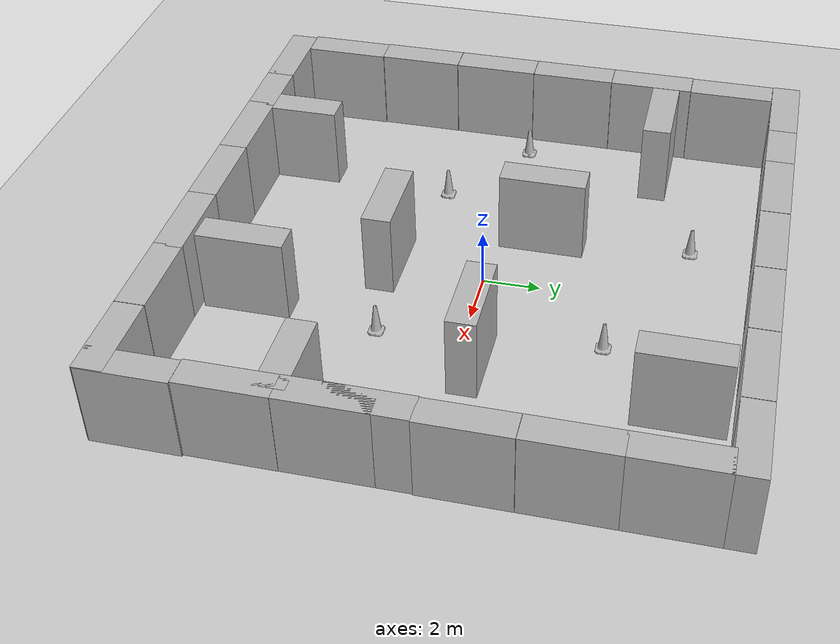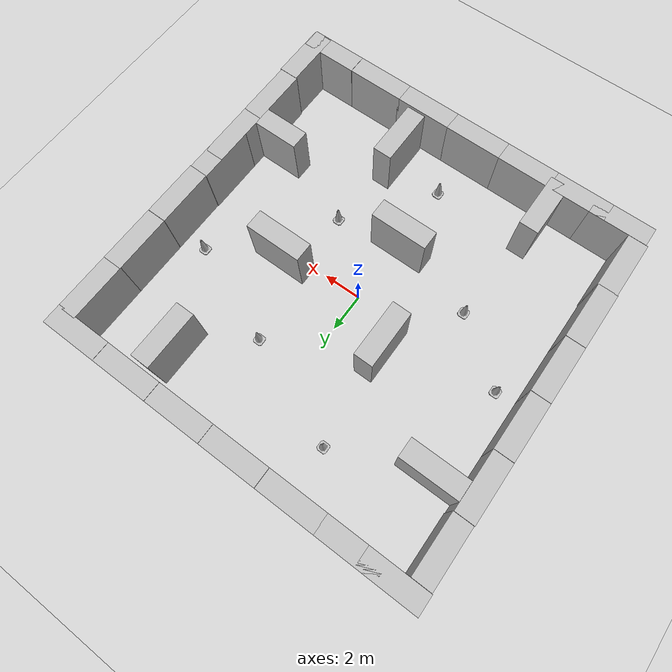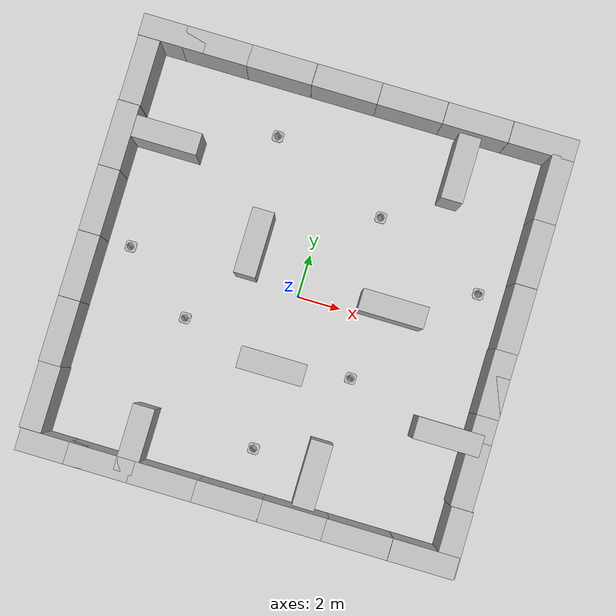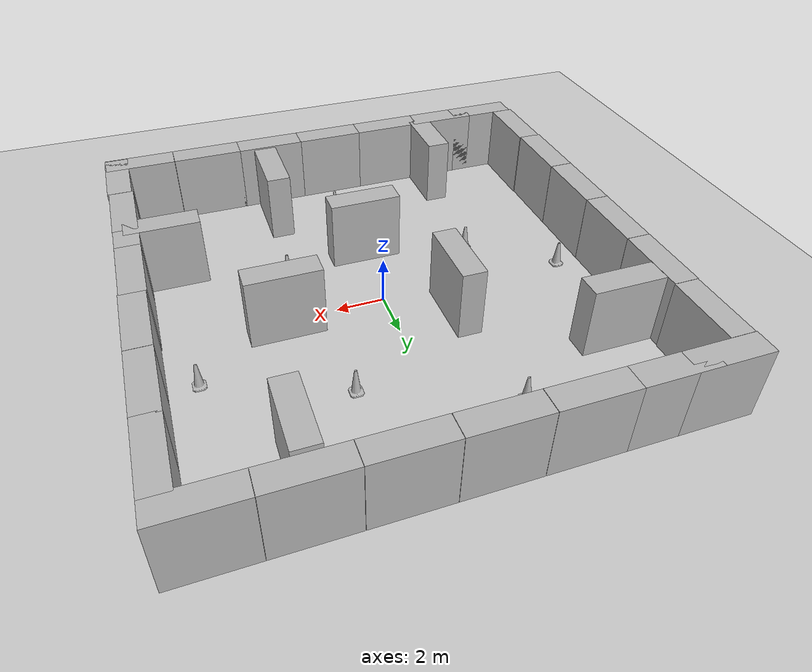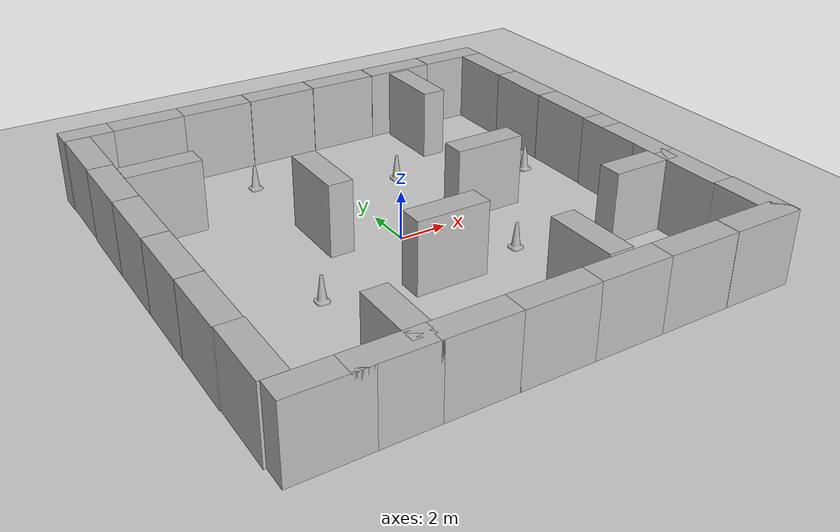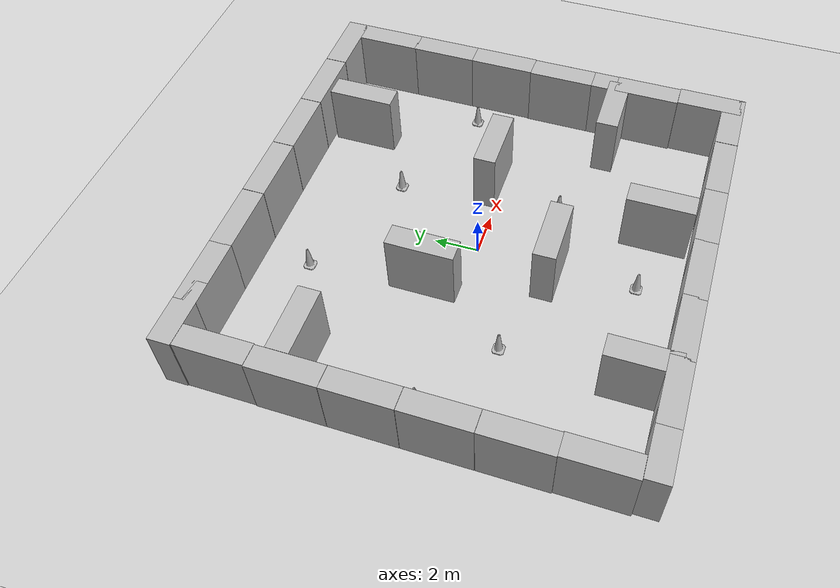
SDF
<sdf version="1.7">
 <world name="default">
  <plugin name="gazebo_ros_state" filename="libgazebo_ros_state.so">
   <ros>
    <argument>model_states:=model_states_plug</argument>
    <argument>link_states:=link_states_plug</argument>
   </ros>
   <update_rate>1.0</update_rate>
  </plugin>
  <light name="sun" type="directional">
   <pose>0 0 10 0 -0 0</pose>
   <diffuse>0.8 0.8 0.8 1</diffuse>
   <specular>0.2 0.2 0.2 1</specular>
   <attenuation>
    <range>1000</range>
    <constant>0.9</constant>
    <linear>0.01</linear>
    <quadratic>0.001</quadratic>
   </attenuation>
   <direction>-0.5 0.1 -0.9</direction>
   <spot><inner_angle>0</inner_angle><outer_angle>0</outer_angle><falloff>0</falloff></spot>
  </light>
  <model name="ground_plane">
   <static>1</static>
   <link name="link">
    <collision name="collision">
     <geometry><plane><normal>0 0 1</normal><size>100 100</size></plane></geometry>
     <surface>
      <contact><collide_bitmask>65535</collide_bitmask></contact>
      <friction><ode><mu>100</mu><mu2>50</mu2></ode></friction>
     </surface>
    </collision>
    <visual name="visual">
     <cast_shadows>0</cast_shadows>
     <geometry><plane><normal>0 0 1</normal><size>100 100</size></plane></geometry>
     <material>
      <script><uri>file://media/materials/scripts/gazebo.material</uri><name>Gazebo/Grey</name></script>
     </material>
    </visual>
   </link>
  </model>
  <gravity>0 0 -9.8</gravity>
  <magnetic_field>6e-06 2.3e-05 -4.2e-05</magnetic_field>
  <atmosphere type="adiabatic"/>
  <physics type="ode">
   <max_step_size>0.001</max_step_size>
   <real_time_factor>1</real_time_factor>
   <real_time_update_rate>1000</real_time_update_rate>
  </physics>
  <scene><ambient>0.4 0.4 0.4 1</ambient><background>0.7 0.7 0.7 1</background><shadows>1</shadows></scene>
  <audio><device>default</device></audio>
  <spherical_coordinates>
   <surface_model>EARTH_WGS84</surface_model>
   <latitude_deg>0</latitude_deg>
   <longitude_deg>0</longitude_deg>
   <elevation>0</elevation>
   <heading_deg>0</heading_deg>
  </spherical_coordinates>
  <model name="brick_box_3x1x3">
   <static>1</static>
   <link name="chassis">
    <pose>0 0 1.5 0 -0 0</pose>
    <collision name="collision"><geometry><box><size>3 1 3</size></box></geometry></collision>
    <visual name="visual">
     <geometry><mesh><uri>model://brick_box_3x1x3/meshes/simple_box.dae</uri><scale>3 1 3</scale></mesh></geometry>
     <material>
      <script>
       <uri>model://brick_box_3x1x3/materials/scripts</uri>
       <uri>model://brick_box_3x1x3/materials/textures</uri>
       <name>BrickBox/Diffuse</name>
      </script>
     </material>
    </visual>
   </link>
   <pose>8.4883 9.49696 0 0 -0 0</pose>
  </model>
  <model name="brick_box_3x1x3_0">
   <static>1</static>
   <link name="chassis">
    <pose>0 0 1.5 0 -0 0</pose>
    <collision name="collision"><geometry><box><size>3 1 3</size></box></geometry></collision>
    <visual name="visual">
     <geometry><mesh><uri>model://brick_box_3x1x3/meshes/simple_box.dae</uri><scale>3 1 3</scale></mesh></geometry>
     <material>
      <script>
       <uri>model://brick_box_3x1x3/materials/scripts</uri>
       <uri>model://brick_box_3x1x3/materials/textures</uri>
       <name>BrickBox/Diffuse</name>
      </script>
     </material>
    </visual>
   </link>
   <pose>5.47783 9.49696 0 0 -0 0</pose>
  </model>
  <model name="brick_box_3x1x3_1">
   <static>1</static>
   <link name="chassis">
    <pose>0 0 1.5 0 -0 0</pose>
    <collision name="collision"><geometry><box><size>3 1 3</size></box></geometry></collision>
    <visual name="visual">
     <geometry><mesh><uri>model://brick_box_3x1x3/meshes/simple_box.dae</uri><scale>3 1 3</scale></mesh></geometry>
     <material>
      <script>
       <uri>model://brick_box_3x1x3/materials/scripts</uri>
       <uri>model://brick_box_3x1x3/materials/textures</uri>
       <name>BrickBox/Diffuse</name>
      </script>
     </material>
    </visual>
   </link>
   <pose>2.46735 9.49696 0 0 -0 0</pose>
  </model>
  <model name="brick_box_3x1x3_2">
   <static>1</static>
   <link name="chassis">
    <pose>0 0 1.5 0 -0 0</pose>
    <collision name="collision"><geometry><box><size>3 1 3</size></box></geometry></collision>
    <visual name="visual">
     <geometry><mesh><uri>model://brick_box_3x1x3/meshes/simple_box.dae</uri><scale>3 1 3</scale></mesh></geometry>
     <material>
      <script>
       <uri>model://brick_box_3x1x3/materials/scripts</uri>
       <uri>model://brick_box_3x1x3/materials/textures</uri>
       <name>BrickBox/Diffuse</name>
      </script>
     </material>
    </visual>
   </link>
   <pose>-0.543123 9.49696 0 0 -0 0</pose>
  </model>
  <model name="brick_box_3x1x3_3">
   <static>1</static>
   <link name="chassis">
    <pose>0 0 1.5 0 -0 0</pose>
    <collision name="collision"><geometry><box><size>3 1 3</size></box></geometry></collision>
    <visual name="visual">
     <geometry><mesh><uri>model://brick_box_3x1x3/meshes/simple_box.dae</uri><scale>3 1 3</scale></mesh></geometry>
     <material>
      <script>
       <uri>model://brick_box_3x1x3/materials/scripts</uri>
       <uri>model://brick_box_3x1x3/materials/textures</uri>
       <name>BrickBox/Diffuse</name>
      </script>
     </material>
    </visual>
   </link>
   <pose>-3.5536 9.49696 0 0 -0 0</pose>
  </model>
  <model name="brick_box_3x1x3_4">
   <static>1</static>
   <link name="chassis">
    <pose>0 0 1.5 0 -0 0</pose>
    <collision name="collision"><geometry><box><size>3 1 3</size></box></geometry></collision>
    <visual name="visual">
     <geometry><mesh><uri>model://brick_box_3x1x3/meshes/simple_box.dae</uri><scale>3 1 3</scale></mesh></geometry>
     <material>
      <script>
       <uri>model://brick_box_3x1x3/materials/scripts</uri>
       <uri>model://brick_box_3x1x3/materials/textures</uri>
       <name>BrickBox/Diffuse</name>
      </script>
     </material>
    </visual>
   </link>
   <pose>-6.53304 9.49696 0 0 -0 0</pose>
  </model>
  <model name="brick_box_3x1x3_5">
   <static>1</static>
   <link name="chassis">
    <pose>0 0 1.5 0 -0 0</pose>
    <collision name="collision"><geometry><box><size>3 1 3</size></box></geometry></collision>
    <visual name="visual">
     <geometry><mesh><uri>model://brick_box_3x1x3/meshes/simple_box.dae</uri><scale>3 1 3</scale></mesh></geometry>
     <material>
      <script>
       <uri>model://brick_box_3x1x3/materials/scripts</uri>
       <uri>model://brick_box_3x1x3/materials/textures</uri>
       <name>BrickBox/Diffuse</name>
      </script>
     </material>
    </visual>
   </link>
   <pose>-8.55037 9.49697 0 0 -0 0</pose>
  </model>
  <model name="brick_box_3x1x3_6">
   <static>1</static>
   <link name="chassis">
    <pose>0 0 1.5 0 -0 0</pose>
    <collision name="collision"><geometry><box><size>3 1 3</size></box></geometry></collision>
    <visual name="visual">
     <geometry><mesh><uri>model://brick_box_3x1x3/meshes/simple_box.dae</uri><scale>3 1 3</scale></mesh></geometry>
     <material>
      <script>
       <uri>model://brick_box_3x1x3/materials/scripts</uri>
       <uri>model://brick_box_3x1x3/materials/textures</uri>
       <name>BrickBox/Diffuse</name>
      </script>
     </material>
    </visual>
   </link>
   <pose>8.48829 -9.528 0 0 -0 0</pose>
  </model>
  <model name="brick_box_3x1x3_7">
   <static>1</static>
   <link name="chassis">
    <pose>0 0 1.5 0 -0 0</pose>
    <collision name="collision"><geometry><box><size>3 1 3</size></box></geometry></collision>
    <visual name="visual">
     <geometry><mesh><uri>model://brick_box_3x1x3/meshes/simple_box.dae</uri><scale>3 1 3</scale></mesh></geometry>
     <material>
      <script>
       <uri>model://brick_box_3x1x3/materials/scripts</uri>
       <uri>model://brick_box_3x1x3/materials/textures</uri>
       <name>BrickBox/Diffuse</name>
      </script>
     </material>
    </visual>
   </link>
   <pose>5.47782 -9.528 0 0 -0 0</pose>
  </model>
  <model name="brick_box_3x1x3_8">
   <static>1</static>
   <link name="chassis">
    <pose>0 0 1.5 0 -0 0</pose>
    <collision name="collision"><geometry><box><size>3 1 3</size></box></geometry></collision>
    <visual name="visual">
     <geometry><mesh><uri>model://brick_box_3x1x3/meshes/simple_box.dae</uri><scale>3 1 3</scale></mesh></geometry>
     <material>
      <script>
       <uri>model://brick_box_3x1x3/materials/scripts</uri>
       <uri>model://brick_box_3x1x3/materials/textures</uri>
       <name>BrickBox/Diffuse</name>
      </script>
     </material>
    </visual>
   </link>
   <pose>2.56045 -9.528 0 0 -0 0</pose>
  </model>
  <model name="brick_box_3x1x3_9">
   <static>1</static>
   <link name="chassis">
    <pose>0 0 1.5 0 -0 0</pose>
    <collision name="collision"><geometry><box><size>3 1 3</size></box></geometry></collision>
    <visual name="visual">
     <geometry><mesh><uri>model://brick_box_3x1x3/meshes/simple_box.dae</uri><scale>3 1 3</scale></mesh></geometry>
     <material>
      <script>
       <uri>model://brick_box_3x1x3/materials/scripts</uri>
       <uri>model://brick_box_3x1x3/materials/textures</uri>
       <name>BrickBox/Diffuse</name>
      </script>
     </material>
    </visual>
   </link>
   <pose>-0.418988 -9.528 0 0 -0 0</pose>
  </model>
  <model name="brick_box_3x1x3_10">
   <static>1</static>
   <link name="chassis">
    <pose>0 0 1.5 0 -0 0</pose>
    <collision name="collision"><geometry><box><size>3 1 3</size></box></geometry></collision>
    <visual name="visual">
     <geometry><mesh><uri>model://brick_box_3x1x3/meshes/simple_box.dae</uri><scale>3 1 3</scale></mesh></geometry>
     <material>
      <script>
       <uri>model://brick_box_3x1x3/materials/scripts</uri>
       <uri>model://brick_box_3x1x3/materials/textures</uri>
       <name>BrickBox/Diffuse</name>
      </script>
     </material>
    </visual>
   </link>
   <pose>-3.33635 -9.528 0 0 -0 0</pose>
  </model>
  <model name="brick_box_3x1x3_11">
   <static>1</static>
   <link name="chassis">
    <pose>0 0 1.5 0 -0 0</pose>
    <collision name="collision"><geometry><box><size>3 1 3</size></box></geometry></collision>
    <visual name="visual">
     <geometry><mesh><uri>model://brick_box_3x1x3/meshes/simple_box.dae</uri><scale>3 1 3</scale></mesh></geometry>
     <material>
      <script>
       <uri>model://brick_box_3x1x3/materials/scripts</uri>
       <uri>model://brick_box_3x1x3/materials/textures</uri>
       <name>BrickBox/Diffuse</name>
      </script>
     </material>
    </visual>
   </link>
   <pose>-6.22269 -9.528 0 0 -0 0</pose>
  </model>
  <model name="brick_box_3x1x3_12">
   <static>1</static>
   <link name="chassis">
    <pose>0 0 1.5 0 -0 0</pose>
    <collision name="collision"><geometry><box><size>3 1 3</size></box></geometry></collision>
    <visual name="visual">
     <geometry><mesh><uri>model://brick_box_3x1x3/meshes/simple_box.dae</uri><scale>3 1 3</scale></mesh></geometry>
     <material>
      <script>
       <uri>model://brick_box_3x1x3/materials/scripts</uri>
       <uri>model://brick_box_3x1x3/materials/textures</uri>
       <name>BrickBox/Diffuse</name>
      </script>
     </material>
    </visual>
   </link>
   <pose>-8.42623 -9.528 0 0 -0 0</pose>
  </model>
  <model name="brick_box_3x1x3_5_clone_clone">
   <static>1</static>
   <link name="chassis">
    <pose>0 0 1.5 0 -0 0</pose>
    <collision name="collision"><geometry><box><size>3 1 3</size></box></geometry></collision>
    <visual name="visual">
     <geometry><mesh><uri>model://brick_box_3x1x3/meshes/simple_box.dae</uri><scale>3 1 3</scale></mesh></geometry>
     <material>
      <script>
       <uri>model://brick_box_3x1x3/materials/scripts</uri>
       <uri>model://brick_box_3x1x3/materials/textures</uri>
       <name>BrickBox/Diffuse</name>
      </script>
     </material>
    </visual>
   </link>
   <pose>-9.52076 7.4886 0 0 -0 1.57</pose>
  </model>
  <model name="brick_box_3x1x3_5_clone_clone_clone">
   <static>1</static>
   <link name="chassis">
    <pose>0 0 1.5 0 -0 0</pose>
    <collision name="collision"><geometry><box><size>3 1 3</size></box></geometry></collision>
    <visual name="visual">
     <geometry><mesh><uri>model://brick_box_3x1x3/meshes/simple_box.dae</uri><scale>3 1 3</scale></mesh></geometry>
     <material>
      <script>
       <uri>model://brick_box_3x1x3/materials/scripts</uri>
       <uri>model://brick_box_3x1x3/materials/textures</uri>
       <name>BrickBox/Diffuse</name>
      </script>
     </material>
    </visual>
   </link>
   <pose>-9.55276 4.48036 0 0 -0 1.57</pose>
  </model>
  <model name="brick_box_3x1x3_5_clone_clone_clone_clone">
   <static>1</static>
   <link name="chassis">
    <pose>0 0 1.5 0 -0 0</pose>
    <collision name="collision"><geometry><box><size>3 1 3</size></box></geometry></collision>
    <visual name="visual">
     <geometry><mesh><uri>model://brick_box_3x1x3/meshes/simple_box.dae</uri><scale>3 1 3</scale></mesh></geometry>
     <material>
      <script>
       <uri>model://brick_box_3x1x3/materials/scripts</uri>
       <uri>model://brick_box_3x1x3/materials/textures</uri>
       <name>BrickBox/Diffuse</name>
      </script>
     </material>
    </visual>
   </link>
   <pose>-9.55276 1.47212 0 0 -0 1.57</pose>
  </model>
  <model name="brick_box_3x1x3_5_clone_clone_clone_clone_0">
   <static>1</static>
   <link name="chassis">
    <pose>0 0 1.5 0 -0 0</pose>
    <collision name="collision"><geometry><box><size>3 1 3</size></box></geometry></collision>
    <visual name="visual">
     <geometry><mesh><uri>model://brick_box_3x1x3/meshes/simple_box.dae</uri><scale>3 1 3</scale></mesh></geometry>
     <material>
      <script>
       <uri>model://brick_box_3x1x3/materials/scripts</uri>
       <uri>model://brick_box_3x1x3/materials/textures</uri>
       <name>BrickBox/Diffuse</name>
      </script>
     </material>
    </visual>
   </link>
   <pose>-9.55276 -1.53612 0 0 -0 1.57</pose>
  </model>
  <model name="brick_box_3x1x3_5_clone_clone_clone_clone_1">
   <static>1</static>
   <link name="chassis">
    <pose>0 0 1.5 0 -0 0</pose>
    <collision name="collision"><geometry><box><size>3 1 3</size></box></geometry></collision>
    <visual name="visual">
     <geometry><mesh><uri>model://brick_box_3x1x3/meshes/simple_box.dae</uri><scale>3 1 3</scale></mesh></geometry>
     <material>
      <script>
       <uri>model://brick_box_3x1x3/materials/scripts</uri>
       <uri>model://brick_box_3x1x3/materials/textures</uri>
       <name>BrickBox/Diffuse</name>
      </script>
     </material>
    </visual>
   </link>
   <pose>-9.55276 -4.54436 0 0 -0 1.57</pose>
  </model>
  <model name="brick_box_3x1x3_5_clone_clone_clone_clone_2">
   <static>1</static>
   <link name="chassis">
    <pose>0 0 1.5 0 -0 0</pose>
    <collision name="collision"><geometry><box><size>3 1 3</size></box></geometry></collision>
    <visual name="visual">
     <geometry><mesh><uri>model://brick_box_3x1x3/meshes/simple_box.dae</uri><scale>3 1 3</scale></mesh></geometry>
     <material>
      <script>
       <uri>model://brick_box_3x1x3/materials/scripts</uri>
       <uri>model://brick_box_3x1x3/materials/textures</uri>
       <name>BrickBox/Diffuse</name>
      </script>
     </material>
    </visual>
   </link>
   <pose>-9.52076 -7.5206 0 0 -0 1.57</pose>
  </model>
  <model name="brick_box_3x1x3_5_clone_clone_clone_clone_3">
   <static>1</static>
   <link name="chassis">
    <pose>0 0 1.5 0 -0 0</pose>
    <collision name="collision"><geometry><box><size>3 1 3</size></box></geometry></collision>
    <visual name="visual">
     <geometry><mesh><uri>model://brick_box_3x1x3/meshes/simple_box.dae</uri><scale>3 1 3</scale></mesh></geometry>
     <material>
      <script>
       <uri>model://brick_box_3x1x3/materials/scripts</uri>
       <uri>model://brick_box_3x1x3/materials/textures</uri>
       <name>BrickBox/Diffuse</name>
      </script>
     </material>
    </visual>
   </link>
   <pose>9.48876 7.5846 0 0 -0 1.57</pose>
  </model>
  <model name="brick_box_3x1x3_5_clone_clone_clone_clone_4">
   <static>1</static>
   <link name="chassis">
    <pose>0 0 1.5 0 -0 0</pose>
    <collision name="collision"><geometry><box><size>3 1 3</size></box></geometry></collision>
    <visual name="visual">
     <geometry><mesh><uri>model://brick_box_3x1x3/meshes/simple_box.dae</uri><scale>3 1 3</scale></mesh></geometry>
     <material>
      <script>
       <uri>model://brick_box_3x1x3/materials/scripts</uri>
       <uri>model://brick_box_3x1x3/materials/textures</uri>
       <name>BrickBox/Diffuse</name>
      </script>
     </material>
    </visual>
   </link>
   <pose>9.48876 4.64037 0 0 -0 1.57</pose>
  </model>
  <model name="brick_box_3x1x3_5_clone_clone_clone_clone_5">
   <static>1</static>
   <link name="chassis">
    <pose>0 0 1.5 0 -0 0</pose>
    <collision name="collision"><geometry><box><size>3 1 3</size></box></geometry></collision>
    <visual name="visual">
     <geometry><mesh><uri>model://brick_box_3x1x3/meshes/simple_box.dae</uri><scale>3 1 3</scale></mesh></geometry>
     <material>
      <script>
       <uri>model://brick_box_3x1x3/materials/scripts</uri>
       <uri>model://brick_box_3x1x3/materials/textures</uri>
       <name>BrickBox/Diffuse</name>
      </script>
     </material>
    </visual>
   </link>
   <pose>9.48876 1.63213 0 0 -0 1.57</pose>
  </model>
  <model name="brick_box_3x1x3_5_clone_clone_clone_clone_6">
   <static>1</static>
   <link name="chassis">
    <pose>0 0 1.5 0 -0 0</pose>
    <collision name="collision"><geometry><box><size>3 1 3</size></box></geometry></collision>
    <visual name="visual">
     <geometry><mesh><uri>model://brick_box_3x1x3/meshes/simple_box.dae</uri><scale>3 1 3</scale></mesh></geometry>
     <material>
      <script>
       <uri>model://brick_box_3x1x3/materials/scripts</uri>
       <uri>model://brick_box_3x1x3/materials/textures</uri>
       <name>BrickBox/Diffuse</name>
      </script>
     </material>
    </visual>
   </link>
   <pose>9.45675 -1.34411 0 0 -0 1.57</pose>
  </model>
  <model name="brick_box_3x1x3_5_clone_clone_clone_clone_8">
   <static>1</static>
   <link name="chassis">
    <pose>0 0 1.5 0 -0 0</pose>
    <collision name="collision"><geometry><box><size>3 1 3</size></box></geometry></collision>
    <visual name="visual">
     <geometry><mesh><uri>model://brick_box_3x1x3/meshes/simple_box.dae</uri><scale>3 1 3</scale></mesh></geometry>
     <material>
      <script>
       <uri>model://brick_box_3x1x3/materials/scripts</uri>
       <uri>model://brick_box_3x1x3/materials/textures</uri>
       <name>BrickBox/Diffuse</name>
      </script>
     </material>
    </visual>
   </link>
   <pose>9.52076 -8.48068 0 0 -0 1.57</pose>
  </model>
  <model name="brick_box_3x1x3_5_clone_clone_clone_clone_7">
   <static>1</static>
   <link name="chassis">
    <pose>0 0 1.5 0 -0 0</pose>
    <collision name="collision"><geometry><box><size>3 1 3</size></box></geometry></collision>
    <visual name="visual">
     <geometry><mesh><uri>model://brick_box_3x1x3/meshes/simple_box.dae</uri><scale>3 1 3</scale></mesh></geometry>
     <material>
      <script>
       <uri>model://brick_box_3x1x3/materials/scripts</uri>
       <uri>model://brick_box_3x1x3/materials/textures</uri>
       <name>BrickBox/Diffuse</name>
      </script>
     </material>
    </visual>
   </link>
   <pose>9.45675 -2.4962 0 0 -0 1.57</pose>
  </model>
  <model name="brick_box_3x1x3_5_clone_clone_clone_clone_10_clone">
   <static>1</static>
   <link name="chassis">
    <pose>0 0 1.5 0 -0 0</pose>
    <collision name="collision"><geometry><box><size>3 1 3</size></box></geometry></collision>
    <visual name="visual">
     <geometry><mesh><uri>model://brick_box_3x1x3/meshes/simple_box.dae</uri><scale>3 1 3</scale></mesh></geometry>
     <material>
      <script>
       <uri>model://brick_box_3x1x3/materials/scripts</uri>
       <uri>model://brick_box_3x1x3/materials/textures</uri>
       <name>BrickBox/Diffuse</name>
      </script>
     </material>
    </visual>
   </link>
   <pose>9.46409 -5.47609 0 0 -0 1.57</pose>
  </model>
  <model name="brick_box_3x1x3_clone_0_clone">
   <static>1</static>
   <link name="chassis">
    <pose>0 0 1.5 0 -0 0</pose>
    <collision name="collision"><geometry><box><size>3 1 3</size></box></geometry></collision>
    <visual name="visual">
     <geometry><mesh><uri>model://brick_box_3x1x3/meshes/simple_box.dae</uri><scale>3 1 3</scale></mesh></geometry>
     <material>
      <script>
       <uri>model://brick_box_3x1x3/materials/scripts</uri>
       <uri>model://brick_box_3x1x3/materials/textures</uri>
       <name>BrickBox/Diffuse</name>
      </script>
     </material>
    </visual>
   </link>
   <pose>4.19243 0.55899 0 0 -0 0</pose>
  </model>
  <model name="brick_box_3x1x3_clone_0_clone_clone">
   <static>1</static>
   <link name="chassis">
    <pose>0 0 1.5 0 -0 0</pose>
    <collision name="collision"><geometry><box><size>3 1 3</size></box></geometry></collision>
    <visual name="visual">
     <geometry><mesh><uri>model://brick_box_3x1x3/meshes/simple_box.dae</uri><scale>3 1 3</scale></mesh></geometry>
     <material>
      <script>
       <uri>model://brick_box_3x1x3/materials/scripts</uri>
       <uri>model://brick_box_3x1x3/materials/textures</uri>
       <name>BrickBox/Diffuse</name>
      </script>
     </material>
    </visual>
   </link>
   <pose>-7.54638 5.06819 0 0 -0 0</pose>
  </model>
  <model name="brick_box_3x1x3_5_clone_clone_clone_clone_15_clone_0">
   <static>1</static>
   <link name="chassis">
    <pose>0 0 1.5 0 -0 0</pose>
    <collision name="collision"><geometry><box><size>3 1 3</size></box></geometry></collision>
    <visual name="visual">
     <geometry><mesh><uri>model://brick_box_3x1x3/meshes/simple_box.dae</uri><scale>3 1 3</scale></mesh></geometry>
     <material>
      <script>
       <uri>model://brick_box_3x1x3/materials/scripts</uri>
       <uri>model://brick_box_3x1x3/materials/textures</uri>
       <name>BrickBox/Diffuse</name>
      </script>
     </material>
    </visual>
   </link>
   <pose>5.31042 7.34142 0 0 -0 1.57</pose>
  </model>
  <model name="brick_box_3x1x3_5_clone_clone_clone_clone_15_clone_clone">
   <static>1</static>
   <link name="chassis">
    <pose>0 0 1.5 0 -0 0</pose>
    <collision name="collision"><geometry><box><size>3 1 3</size></box></geometry></collision>
    <visual name="visual">
     <geometry><mesh><uri>model://brick_box_3x1x3/meshes/simple_box.dae</uri><scale>3 1 3</scale></mesh></geometry>
     <material>
      <script>
       <uri>model://brick_box_3x1x3/materials/scripts</uri>
       <uri>model://brick_box_3x1x3/materials/textures</uri>
       <name>BrickBox/Diffuse</name>
      </script>
     </material>
    </visual>
   </link>
   <pose>-5.04956 -8.124 0 0 -0 1.57</pose>
  </model>
  <model name="brick_box_3x1x3_clone_0_clone_clone_0">
   <static>1</static>
   <link name="chassis">
    <pose>0 0 1.5 0 -0 0</pose>
    <collision name="collision"><geometry><box><size>3 1 3</size></box></geometry></collision>
    <visual name="visual">
     <geometry><mesh><uri>model://brick_box_3x1x3/meshes/simple_box.dae</uri><scale>3 1 3</scale></mesh></geometry>
     <material>
      <script>
       <uri>model://brick_box_3x1x3/materials/scripts</uri>
       <uri>model://brick_box_3x1x3/materials/textures</uri>
       <name>BrickBox/Diffuse</name>
      </script>
     </material>
    </visual>
   </link>
   <pose>8.0681 -4.13654 0 0 -0 0</pose>
  </model>
  <model name="brick_box_3x1x3_5_clone_clone_clone_clone_15_clone_clone_clone_clone">
   <static>1</static>
   <link name="chassis">
    <pose>0 0 1.5 0 -0 0</pose>
    <collision name="collision"><geometry><box><size>3 1 3</size></box></geometry></collision>
    <visual name="visual">
     <geometry><mesh><uri>model://brick_box_3x1x3/meshes/simple_box.dae</uri><scale>3 1 3</scale></mesh></geometry>
     <material>
      <script>
       <uri>model://brick_box_3x1x3/materials/scripts</uri>
       <uri>model://brick_box_3x1x3/materials/textures</uri>
       <name>BrickBox/Diffuse</name>
      </script>
     </material>
    </visual>
   </link>
   <pose>2.84673 -7.4072 0 0 -0 1.57</pose>
  </model>
  <model name="brick_box_3x1x3_clone_0_clone_clone_1">
   <static>1</static>
   <link name="chassis">
    <pose>0 0 1.5 0 -0 0</pose>
    <collision name="collision"><geometry><box><size>3 1 3</size></box></geometry></collision>
    <visual name="visual">
     <geometry><mesh><uri>model://brick_box_3x1x3/meshes/simple_box.dae</uri><scale>3 1 3</scale></mesh></geometry>
     <material>
      <script>
       <uri>model://brick_box_3x1x3/materials/scripts</uri>
       <uri>model://brick_box_3x1x3/materials/textures</uri>
       <name>BrickBox/Diffuse</name>
      </script>
     </material>
    </visual>
   </link>
   <pose>-0.214773 -3.36602 0 0 -0 0</pose>
  </model>
  <model name="brick_box_3x1x3_5_clone_clone_clone_clone_15_clone_0_clone">
   <static>1</static>
   <link name="chassis">
    <pose>0 0 1.5 0 -0 0</pose>
    <collision name="collision"><geometry><box><size>3 1 3</size></box></geometry></collision>
    <visual name="visual">
     <geometry><mesh><uri>model://brick_box_3x1x3/meshes/simple_box.dae</uri><scale>3 1 3</scale></mesh></geometry>
     <material>
      <script>
       <uri>model://brick_box_3x1x3/materials/scripts</uri>
       <uri>model://brick_box_3x1x3/materials/textures</uri>
       <name>BrickBox/Diffuse</name>
      </script>
     </material>
    </visual>
   </link>
   <pose>-2.50068 1.61393 0 0 -0 1.57</pose>
  </model>
  <model name="Construction Cone">
   <link name="link">
    <collision name="collision">
     <geometry>
      <mesh><scale>10 10 10</scale><uri>model://construction_cone/meshes/construction_cone.dae</uri></mesh>
     </geometry>
    </collision>
    <visual name="visual">
     <geometry>
      <mesh><scale>10 10 10</scale><uri>model://construction_cone/meshes/construction_cone.dae</uri></mesh>
     </geometry>
    </visual>
    <inertial>
     <inertia><ixx>1</ixx><ixy>0</ixy><ixz>0</ixz><iyy>1</iyy><iyz>0</iyz><izz>1</izz></inertia>
     <mass>1</mass>
    </inertial>
   </link>
   <pose>2.59788 4.58055 0 -0 -0 -0</pose>
  </model>
  <model name="Construction Cone_0">
   <link name="link">
    <collision name="collision">
     <geometry>
      <mesh><scale>10 10 10</scale><uri>model://construction_cone/meshes/construction_cone.dae</uri></mesh>
     </geometry>
    </collision>
    <visual name="visual">
     <geometry>
      <mesh><scale>10 10 10</scale><uri>model://construction_cone/meshes/construction_cone.dae</uri></mesh>
     </geometry>
    </visual>
    <inertial>
     <inertia><ixx>1</ixx><ixy>0</ixy><ixz>0</ixz><iyy>1</iyy><iyz>0</iyz><izz>1</izz></inertia>
     <mass>1</mass>
    </inertial>
   </link>
   <pose>-4.68373 -2.37401 -0 0 -0 0</pose>
  </model>
  <model name="Construction Cone_1">
   <link name="link">
    <collision name="collision">
     <geometry>
      <mesh><scale>10 10 10</scale><uri>model://construction_cone/meshes/construction_cone.dae</uri></mesh>
     </geometry>
    </collision>
    <visual name="visual">
     <geometry>
      <mesh><scale>10 10 10</scale><uri>model://construction_cone/meshes/construction_cone.dae</uri></mesh>
     </geometry>
    </visual>
    <inertial>
     <inertia><ixx>1</ixx><ixy>0</ixy><ixz>0</ixz><iyy>1</iyy><iyz>0</iyz><izz>1</izz></inertia>
     <mass>1</mass>
    </inertial>
   </link>
   <pose>-2.98963 6.83958 -1e-05 -0 -0 -0</pose>
  </model>
  <model name="Construction Cone_2">
   <link name="link">
    <collision name="collision">
     <geometry>
      <mesh><scale>10 10 10</scale><uri>model://construction_cone/meshes/construction_cone.dae</uri></mesh>
     </geometry>
    </collision>
    <visual name="visual">
     <geometry>
      <mesh><scale>10 10 10</scale><uri>model://construction_cone/meshes/construction_cone.dae</uri></mesh>
     </geometry>
    </visual>
    <inertial>
     <inertia><ixx>1</ixx><ixy>0</ixy><ixz>0</ixz><iyy>1</iyy><iyz>0</iyz><izz>1</izz></inertia>
     <mass>1</mass>
    </inertial>
   </link>
   <pose>7.85863 2.47036 -0 0 -0 0</pose>
  </model>
  <model name="Construction Cone_3">
   <link name="link">
    <collision name="collision">
     <geometry>
      <mesh><scale>10 10 10</scale><uri>model://construction_cone/meshes/construction_cone.dae</uri></mesh>
     </geometry>
    </collision>
    <visual name="visual">
     <geometry>
      <mesh><scale>10 10 10</scale><uri>model://construction_cone/meshes/construction_cone.dae</uri></mesh>
     </geometry>
    </visual>
    <inertial>
     <inertia><ixx>1</ixx><ixy>0</ixy><ixz>0</ixz><iyy>1</iyy><iyz>0</iyz><izz>1</izz></inertia>
     <mass>1</mass>
    </inertial>
   </link>
   <pose>3.34097 -2.87937 -8e-06 1e-06 -0 0</pose>
  </model>
  <model name="Construction Cone_4">
   <link name="link">
    <collision name="collision">
     <geometry>
      <mesh><scale>10 10 10</scale><uri>model://construction_cone/meshes/construction_cone.dae</uri></mesh>
     </geometry>
    </collision>
    <visual name="visual">
     <geometry>
      <mesh><scale>10 10 10</scale><uri>model://construction_cone/meshes/construction_cone.dae</uri></mesh>
     </geometry>
    </visual>
    <inertial>
     <inertia><ixx>1</ixx><ixy>0</ixy><ixz>0</ixz><iyy>1</iyy><iyz>0</iyz><izz>1</izz></inertia>
     <mass>1</mass>
    </inertial>
   </link>
   <pose>-8.01256 0.062981 -0 0 -1e-06 0</pose>
  </model>
  <model name="Construction Cone_5">
   <link name="link">
    <collision name="collision">
     <geometry>
      <mesh><scale>10 10 10</scale><uri>model://construction_cone/meshes/construction_cone.dae</uri></mesh>
     </geometry>
    </collision>
    <visual name="visual">
     <geometry>
      <mesh><scale>10 10 10</scale><uri>model://construction_cone/meshes/construction_cone.dae</uri></mesh>
     </geometry>
    </visual>
    <inertial>
     <inertia><ixx>1</ixx><ixy>0</ixy><ixz>0</ixz><iyy>1</iyy><iyz>0</iyz><izz>1</izz></inertia>
     <mass>1</mass>
    </inertial>
   </link>
   <pose>0.012193 -7.18897 -0 0 -0 0</pose>
  </model>
 </world>
</sdf>
